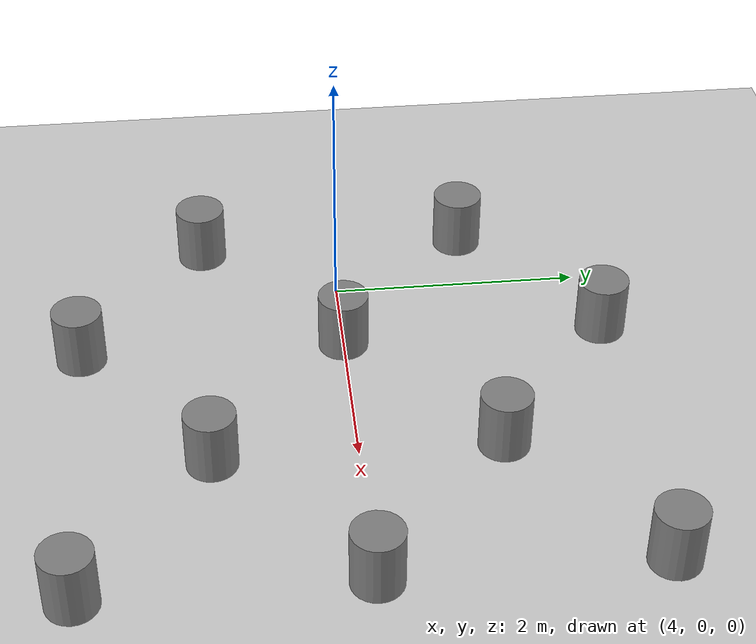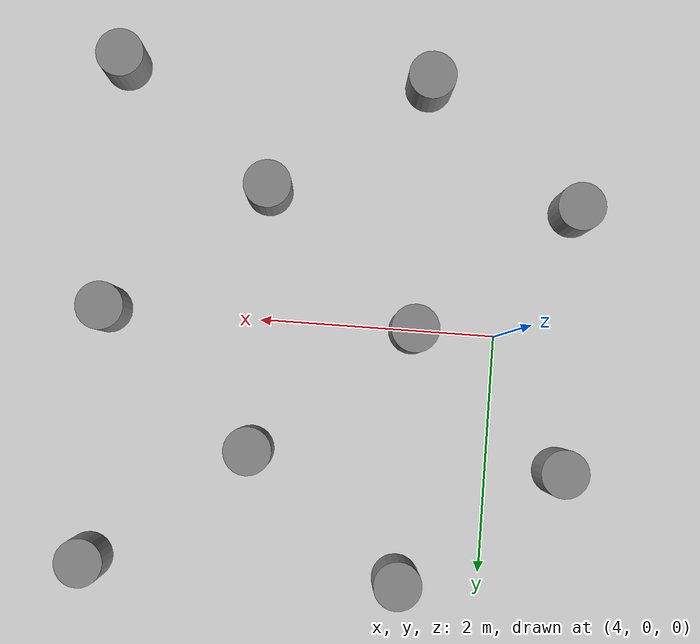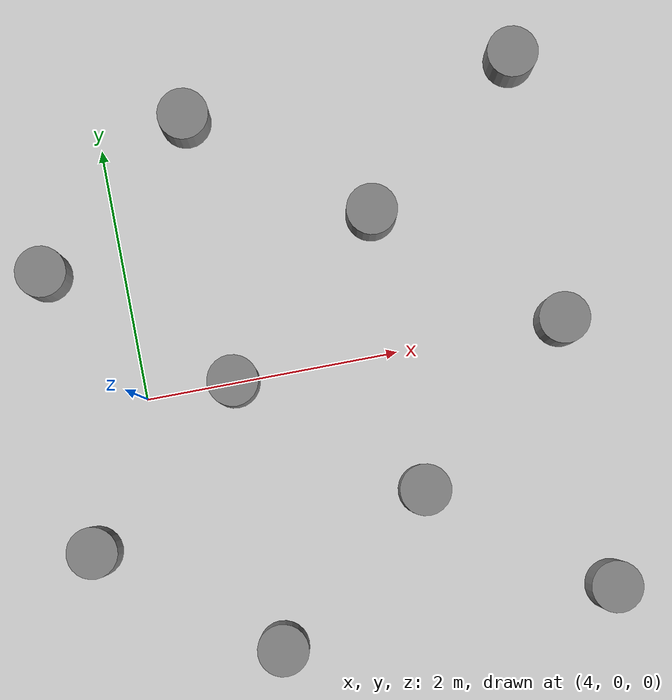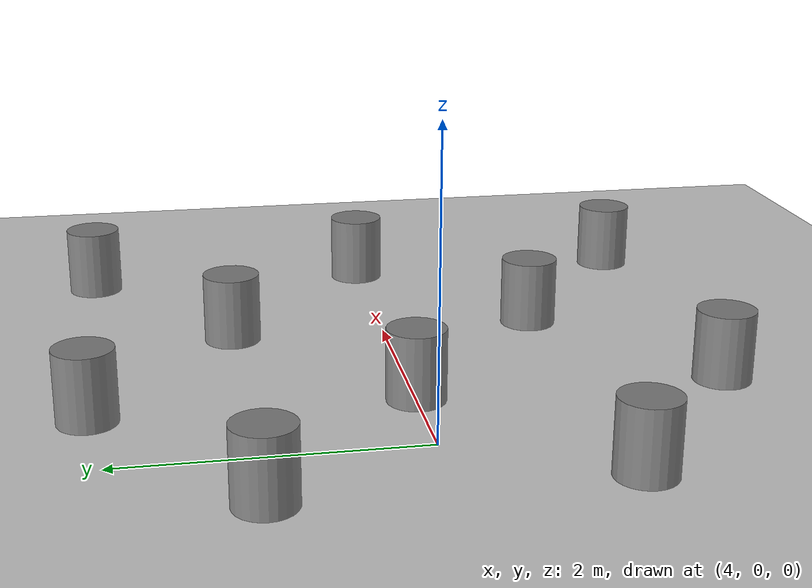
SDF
<?xml version="1.0" ?>
<sdf version="1.5">
    <world name="default">
        <physics type="ode">
            <type>world</type>
            <max_step_size>0.002</max_step_size>
            <real_time_update_rate>500</real_time_update_rate>
            <iters>500</iters>
        </physics>

        <include><uri>model://sun</uri></include>
        <include><uri>model://ground_plane</uri></include>

        <scene>
            <ambient>0.8 0.8 0.8 1</ambient>
            <background>0.9 0.9 0.9 1</background>
            <shadows>false</shadows>
        </scene>

        <model name="peg_00">
            <static>true</static>
            <pose>3.4 1.1 0.25  0 0 0</pose>
            <link name="link">
                <collision name="col">
                    <geometry><cylinder><radius>0.2</radius><length>0.5</length></cylinder></geometry>
                </collision>
                <visual name="vis">
                    <geometry><cylinder><radius>0.2</radius><length>0.5</length></cylinder></geometry>
                    <material>
                        <ambient>0.5 0.5 0.5 1</ambient>
                        <diffuse>0.5 0.5 0.5 1</diffuse>
                    </material>
                </visual>
            </link>
        </model>

        <model name="peg_01">
            <static>true</static>
            <pose>3.4 -1.1 0.25  0 0 0</pose>
            <link name="link">
                <collision name="col">
                    <geometry><cylinder><radius>0.2</radius><length>0.5</length></cylinder></geometry>
                </collision>
                <visual name="vis">
                    <geometry><cylinder><radius>0.2</radius><length>0.5</length></cylinder></geometry>
                    <material>
                        <ambient>0.5 0.5 0.5 1</ambient>
                        <diffuse>0.5 0.5 0.5 1</diffuse>
                    </material>
                </visual>
            </link>
        </model>

        <model name="peg_02">
            <static>true</static>
            <pose>4.7 0.0 0.25  0 0 0</pose>
            <link name="link">
                <collision name="col">
                    <geometry><cylinder><radius>0.2</radius><length>0.5</length></cylinder></geometry>
                </collision>
                <visual name="vis">
                    <geometry><cylinder><radius>0.2</radius><length>0.5</length></cylinder></geometry>
                    <material>
                        <ambient>0.5 0.5 0.5 1</ambient>
                        <diffuse>0.5 0.5 0.5 1</diffuse>
                    </material>
                </visual>
            </link>
        </model>

        <model name="peg_03">
            <static>true</static>
            <pose>4.7 2.1 0.25  0 0 0</pose>
            <link name="link">
                <collision name="col">
                    <geometry><cylinder><radius>0.2</radius><length>0.5</length></cylinder></geometry>
                </collision>
                <visual name="vis">
                    <geometry><cylinder><radius>0.2</radius><length>0.5</length></cylinder></geometry>
                    <material>
                        <ambient>0.5 0.5 0.5 1</ambient>
                        <diffuse>0.5 0.5 0.5 1</diffuse>
                    </material>
                </visual>
            </link>
        </model>

        <model name="peg_04">
            <static>true</static>
            <pose>4.7 -2.1 0.25  0 0 0</pose>
            <link name="link">
                <collision name="col">
                    <geometry><cylinder><radius>0.2</radius><length>0.5</length></cylinder></geometry>
                </collision>
                <visual name="vis">
                    <geometry><cylinder><radius>0.2</radius><length>0.5</length></cylinder></geometry>
                    <material>
                        <ambient>0.5 0.5 0.5 1</ambient>
                        <diffuse>0.5 0.5 0.5 1</diffuse>
                    </material>
                </visual>
            </link>
        </model>

        <model name="peg_05">
            <static>true</static>
            <pose>6.0 1.1 0.25  0 0 0</pose>
            <link name="link">
                <collision name="col">
                    <geometry><cylinder><radius>0.2</radius><length>0.5</length></cylinder></geometry>
                </collision>
                <visual name="vis">
                    <geometry><cylinder><radius>0.2</radius><length>0.5</length></cylinder></geometry>
                    <material>
                        <ambient>0.5 0.5 0.5 1</ambient>
                        <diffuse>0.5 0.5 0.5 1</diffuse>
                    </material>
                </visual>
            </link>
        </model>

        <model name="peg_06">
            <static>true</static>
            <pose>6.0 -1.1 0.25  0 0 0</pose>
            <link name="link">
                <collision name="col">
                    <geometry><cylinder><radius>0.2</radius><length>0.5</length></cylinder></geometry>
                </collision>
                <visual name="vis">
                    <geometry><cylinder><radius>0.2</radius><length>0.5</length></cylinder></geometry>
                    <material>
                        <ambient>0.5 0.5 0.5 1</ambient>
                        <diffuse>0.5 0.5 0.5 1</diffuse>
                    </material>
                </visual>
            </link>
        </model>

        <model name="peg_07">
            <static>true</static>
            <pose>7.3 0.0 0.25  0 0 0</pose>
            <link name="link">
                <collision name="col">
                    <geometry><cylinder><radius>0.2</radius><length>0.5</length></cylinder></geometry>
                </collision>
                <visual name="vis">
                    <geometry><cylinder><radius>0.2</radius><length>0.5</length></cylinder></geometry>
                    <material>
                        <ambient>0.5 0.5 0.5 1</ambient>
                        <diffuse>0.5 0.5 0.5 1</diffuse>
                    </material>
                </visual>
            </link>
        </model>

        <model name="peg_08">
            <static>true</static>
            <pose>7.3 2.1 0.25  0 0 0</pose>
            <link name="link">
                <collision name="col">
                    <geometry><cylinder><radius>0.2</radius><length>0.5</length></cylinder></geometry>
                </collision>
                <visual name="vis">
                    <geometry><cylinder><radius>0.2</radius><length>0.5</length></cylinder></geometry>
                    <material>
                        <ambient>0.5 0.5 0.5 1</ambient>
                        <diffuse>0.5 0.5 0.5 1</diffuse>
                    </material>
                </visual>
            </link>
        </model>

        <model name="peg_09">
            <static>true</static>
            <pose>7.3 -2.1 0.25  0 0 0</pose>
            <link name="link">
                <collision name="col">
                    <geometry><cylinder><radius>0.2</radius><length>0.5</length></cylinder></geometry>
                </collision>
                <visual name="vis">
                    <geometry><cylinder><radius>0.2</radius><length>0.5</length></cylinder></geometry>
                    <material>
                        <ambient>0.5 0.5 0.5 1</ambient>
                        <diffuse>0.5 0.5 0.5 1</diffuse>
                    </material>
                </visual>
            </link>
        </model>

    </world>
</sdf>
